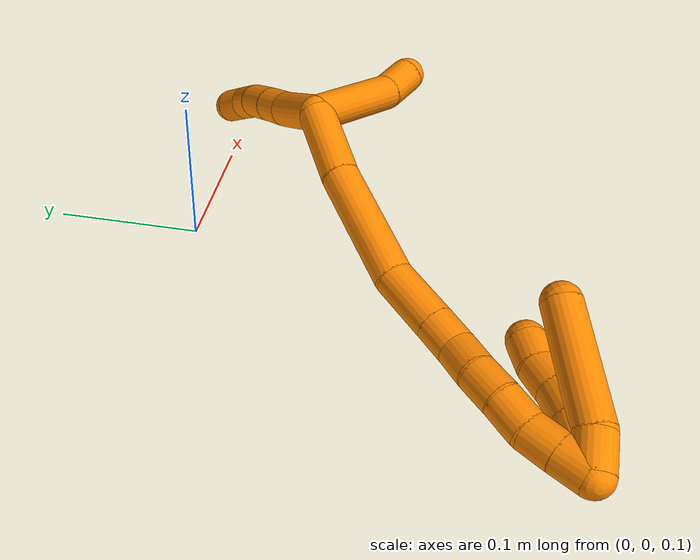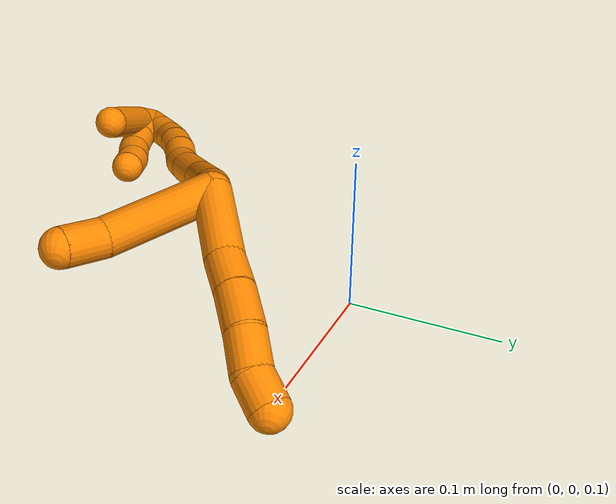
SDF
<sdf version="1.7">
 <world name="default">
  <model name="19">
   <static>0</static>
   <link name="19">
    <collision name="collision-cylinder-e_1_2_8">
     <pose>-0.005798 0.006249 -0.024558 -2.89242 -0.224919 1.46762</pose>
     <geometry><cylinder><radius>0.0125</radius><length>0.05199</length></cylinder></geometry>
     <surface>
      <friction><ode><mu>1.16</mu><mu2>1.16</mu2><slip1>0</slip1><slip2>0</slip2></ode></friction>
      <contact><ode><kp>1e+06</kp><kd>1</kd><max_vel>0</max_vel><min_depth>0.001</min_depth></ode></contact>
     </surface>
    </collision>
    <visual name="visual-cylinder-e_1_2_8">
     <pose>-0.005798 0.006249 -0.024558 -2.89242 -0.224919 1.46762</pose>
     <geometry><cylinder><radius>0.0125</radius><length>0.05199</length></cylinder></geometry>
     <material><ambient>0.996078 0.537255 0 1</ambient></material>
    </visual>
    <collision name="collision-cylinder-e_2_8_9">
     <pose>-0.013523 0.016771 -0.060078 -2.76988 -0.1624 0.816923</pose>
     <geometry><cylinder><radius>0.0125</radius><length>0.023845</length></cylinder></geometry>
     <surface>
      <friction><ode><mu>1.16</mu><mu2>1.16</mu2><slip1>0</slip1><slip2>0</slip2></ode></friction>
      <contact><ode><kp>1e+06</kp><kd>1</kd><max_vel>0</max_vel><min_depth>0.001</min_depth></ode></contact>
     </surface>
    </collision>
    <visual name="visual-cylinder-e_2_8_9">
     <pose>-0.013523 0.016771 -0.060078 -2.76988 -0.1624 0.816923</pose>
     <geometry><cylinder><radius>0.0125</radius><length>0.023845</length></cylinder></geometry>
     <material><ambient>0.996078 0.537255 0 1</ambient></material>
    </visual>
    <collision name="collision-cylinder-e_3_9_10">
     <pose>-0.018097 0.025251 -0.084391 -2.83637 -0.186805 1.09409</pose>
     <geometry><cylinder><radius>0.0125</radius><length>0.028493</length></cylinder></geometry>
     <surface>
      <friction><ode><mu>1.16</mu><mu2>1.16</mu2><slip1>0</slip1><slip2>0</slip2></ode></friction>
      <contact><ode><kp>1e+06</kp><kd>1</kd><max_vel>0</max_vel><min_depth>0.001</min_depth></ode></contact>
     </surface>
    </collision>
    <visual name="visual-cylinder-e_3_9_10">
     <pose>-0.018097 0.025251 -0.084391 -2.83637 -0.186805 1.09409</pose>
     <geometry><cylinder><radius>0.0125</radius><length>0.028493</length></cylinder></geometry>
     <material><ambient>0.996078 0.537255 0 1</ambient></material>
    </visual>
    <collision name="collision-cylinder-e_4_10_11">
     <pose>-0.024529 0.03164 -0.109247 -2.95414 -0.312744 2.0663</pose>
     <geometry><cylinder><radius>0.0125</radius><length>0.024614</length></cylinder></geometry>
     <surface>
      <friction><ode><mu>1.16</mu><mu2>1.16</mu2><slip1>0</slip1><slip2>0</slip2></ode></friction>
      <contact><ode><kp>1e+06</kp><kd>1</kd><max_vel>0</max_vel><min_depth>0.001</min_depth></ode></contact>
     </surface>
    </collision>
    <visual name="visual-cylinder-e_4_10_11">
     <pose>-0.024529 0.03164 -0.109247 -2.95414 -0.312744 2.0663</pose>
     <geometry><cylinder><radius>0.0125</radius><length>0.024614</length></cylinder></geometry>
     <material><ambient>0.996078 0.537255 0 1</ambient></material>
    </visual>
    <collision name="collision-cylinder-e_5_11_6">
     <pose>-0.032849 0.038 -0.129288 -2.6865 -0.445096 1.54781</pose>
     <geometry><cylinder><radius>0.0125</radius><length>0.021058</length></cylinder></geometry>
     <surface>
      <friction><ode><mu>1.16</mu><mu2>1.16</mu2><slip1>0</slip1><slip2>0</slip2></ode></friction>
      <contact><ode><kp>1e+06</kp><kd>1</kd><max_vel>0</max_vel><min_depth>0.001</min_depth></ode></contact>
     </surface>
    </collision>
    <visual name="visual-cylinder-e_5_11_6">
     <pose>-0.032849 0.038 -0.129288 -2.6865 -0.445096 1.54781</pose>
     <geometry><cylinder><radius>0.0125</radius><length>0.021058</length></cylinder></geometry>
     <material><ambient>0.996078 0.537255 0 1</ambient></material>
    </visual>
    <collision name="collision-cylinder-e_1_2_12">
     <pose>0.012731 -0.024925 -0.023316 2.32286 0.35701 0.788179</pose>
     <geometry><cylinder><radius>0.0125</radius><length>0.072856</length></cylinder></geometry>
     <surface>
      <friction><ode><mu>1.16</mu><mu2>1.16</mu2><slip1>0</slip1><slip2>0</slip2></ode></friction>
      <contact><ode><kp>1e+06</kp><kd>1</kd><max_vel>0</max_vel><min_depth>0.001</min_depth></ode></contact>
     </surface>
    </collision>
    <visual name="visual-cylinder-e_1_2_12">
     <pose>0.012731 -0.024925 -0.023316 2.32286 0.35701 0.788179</pose>
     <geometry><cylinder><radius>0.0125</radius><length>0.072856</length></cylinder></geometry>
     <material><ambient>0.996078 0.537255 0 1</ambient></material>
    </visual>
    <collision name="collision-cylinder-e_2_12_5">
     <pose>0.033298 -0.056734 -0.055316 2.47127 0.615529 1.47948</pose>
     <geometry><cylinder><radius>0.0125</radius><length>0.027144</length></cylinder></geometry>
     <surface>
      <friction><ode><mu>1.16</mu><mu2>1.16</mu2><slip1>0</slip1><slip2>0</slip2></ode></friction>
      <contact><ode><kp>1e+06</kp><kd>1</kd><max_vel>0</max_vel><min_depth>0.001</min_depth></ode></contact>
     </surface>
    </collision>
    <visual name="visual-cylinder-e_2_12_5">
     <pose>0.033298 -0.056734 -0.055316 2.47127 0.615529 1.47948</pose>
     <geometry><cylinder><radius>0.0125</radius><length>0.027144</length></cylinder></geometry>
     <material><ambient>0.996078 0.537255 0 1</ambient></material>
    </visual>
    <collision name="collision-cylinder-e_1_2_13">
     <pose>-0.013824 -0.011497 0.018933 0.545727 -0.557942 -0.159975</pose>
     <geometry><cylinder><radius>0.0125</radius><length>0.052221</length></cylinder></geometry>
     <surface>
      <friction><ode><mu>1.16</mu><mu2>1.16</mu2><slip1>0</slip1><slip2>0</slip2></ode></friction>
      <contact><ode><kp>1e+06</kp><kd>1</kd><max_vel>0</max_vel><min_depth>0.001</min_depth></ode></contact>
     </surface>
    </collision>
    <visual name="visual-cylinder-e_1_2_13">
     <pose>-0.013824 -0.011497 0.018933 0.545727 -0.557942 -0.159975</pose>
     <geometry><cylinder><radius>0.0125</radius><length>0.052221</length></cylinder></geometry>
     <material><ambient>0.996078 0.537255 0 1</ambient></material>
    </visual>
    <collision name="collision-cylinder-e_2_13_14">
     <pose>-0.04592 -0.043903 0.066861 0.62478 -0.472527 -0.155202</pose>
     <geometry><cylinder><radius>0.0125</radius><length>0.080293</length></cylinder></geometry>
     <surface>
      <friction><ode><mu>1.16</mu><mu2>1.16</mu2><slip1>0</slip1><slip2>0</slip2></ode></friction>
      <contact><ode><kp>1e+06</kp><kd>1</kd><max_vel>0</max_vel><min_depth>0.001</min_depth></ode></contact>
     </surface>
    </collision>
    <visual name="visual-cylinder-e_2_13_14">
     <pose>-0.04592 -0.043903 0.066861 0.62478 -0.472527 -0.155202</pose>
     <geometry><cylinder><radius>0.0125</radius><length>0.080293</length></cylinder></geometry>
     <material><ambient>0.996078 0.537255 0 1</ambient></material>
    </visual>
    <collision name="collision-cylinder-e_3_14_15">
     <pose>-0.069323 -0.077218 0.110529 0.701801 -0.260939 -0.095989</pose>
     <geometry><cylinder><radius>0.0125</radius><length>0.039776</length></cylinder></geometry>
     <surface>
      <friction><ode><mu>1.16</mu><mu2>1.16</mu2><slip1>0</slip1><slip2>0</slip2></ode></friction>
      <contact><ode><kp>1e+06</kp><kd>1</kd><max_vel>0</max_vel><min_depth>0.001</min_depth></ode></contact>
     </surface>
    </collision>
    <visual name="visual-cylinder-e_3_14_15">
     <pose>-0.069323 -0.077218 0.110529 0.701801 -0.260939 -0.095989</pose>
     <geometry><cylinder><radius>0.0125</radius><length>0.039776</length></cylinder></geometry>
     <material><ambient>0.996078 0.537255 0 1</ambient></material>
    </visual>
    <collision name="collision-cylinder-e_4_15_16">
     <pose>-0.077073 -0.095883 0.133408 0.651824 -0.24857 -0.084393</pose>
     <geometry><cylinder><radius>0.0125</radius><length>0.021295</length></cylinder></geometry>
     <surface>
      <friction><ode><mu>1.16</mu><mu2>1.16</mu2><slip1>0</slip1><slip2>0</slip2></ode></friction>
      <contact><ode><kp>1e+06</kp><kd>1</kd><max_vel>0</max_vel><min_depth>0.001</min_depth></ode></contact>
     </surface>
    </collision>
    <visual name="visual-cylinder-e_4_15_16">
     <pose>-0.077073 -0.095883 0.133408 0.651824 -0.24857 -0.084393</pose>
     <geometry><cylinder><radius>0.0125</radius><length>0.021295</length></cylinder></geometry>
     <material><ambient>0.996078 0.537255 0 1</ambient></material>
    </visual>
    <collision name="collision-cylinder-e_5_16_17">
     <pose>-0.081261 -0.106209 0.151619 0.385855 -0.144205 -0.028219</pose>
     <geometry><cylinder><radius>0.0125</radius><length>0.021828</length></cylinder></geometry>
     <surface>
      <friction><ode><mu>1.16</mu><mu2>1.16</mu2><slip1>0</slip1><slip2>0</slip2></ode></friction>
      <contact><ode><kp>1e+06</kp><kd>1</kd><max_vel>0</max_vel><min_depth>0.001</min_depth></ode></contact>
     </surface>
    </collision>
    <visual name="visual-cylinder-e_5_16_17">
     <pose>-0.081261 -0.106209 0.151619 0.385855 -0.144205 -0.028219</pose>
     <geometry><cylinder><radius>0.0125</radius><length>0.021828</length></cylinder></geometry>
     <material><ambient>0.996078 0.537255 0 1</ambient></material>
    </visual>
    <collision name="collision-cylinder-e_6_17_18">
     <pose>-0.084563 -0.115889 0.170941 0.542498 -0.157981 -0.044019</pose>
     <geometry><cylinder><radius>0.0125</radius><length>0.022029</length></cylinder></geometry>
     <surface>
      <friction><ode><mu>1.16</mu><mu2>1.16</mu2><slip1>0</slip1><slip2>0</slip2></ode></friction>
      <contact><ode><kp>1e+06</kp><kd>1</kd><max_vel>0</max_vel><min_depth>0.001</min_depth></ode></contact>
     </surface>
    </collision>
    <visual name="visual-cylinder-e_6_17_18">
     <pose>-0.084563 -0.115889 0.170941 0.542498 -0.157981 -0.044019</pose>
     <geometry><cylinder><radius>0.0125</radius><length>0.022029</length></cylinder></geometry>
     <material><ambient>0.996078 0.537255 0 1</ambient></material>
    </visual>
    <collision name="collision-cylinder-e_7_18_19">
     <pose>-0.089076 -0.128025 0.188937 0.644218 -0.250764 -0.08408</pose>
     <geometry><cylinder><radius>0.0125</radius><length>0.022414</length></cylinder></geometry>
     <surface>
      <friction><ode><mu>1.16</mu><mu2>1.16</mu2><slip1>0</slip1><slip2>0</slip2></ode></friction>
      <contact><ode><kp>1e+06</kp><kd>1</kd><max_vel>0</max_vel><min_depth>0.001</min_depth></ode></contact>
     </surface>
    </collision>
    <visual name="visual-cylinder-e_7_18_19">
     <pose>-0.089076 -0.128025 0.188937 0.644218 -0.250764 -0.08408</pose>
     <geometry><cylinder><radius>0.0125</radius><length>0.022414</length></cylinder></geometry>
     <material><ambient>0.996078 0.537255 0 1</ambient></material>
    </visual>
    <collision name="collision-cylinder-e_8_19_20">
     <pose>-0.09227 -0.141363 0.204981 0.746941 -0.041092 -0.016104</pose>
     <geometry><cylinder><radius>0.0125</radius><length>0.020087</length></cylinder></geometry>
     <surface>
      <friction><ode><mu>1.16</mu><mu2>1.16</mu2><slip1>0</slip1><slip2>0</slip2></ode></friction>
      <contact><ode><kp>1e+06</kp><kd>1</kd><max_vel>0</max_vel><min_depth>0.001</min_depth></ode></contact>
     </surface>
    </collision>
    <visual name="visual-cylinder-e_8_19_20">
     <pose>-0.09227 -0.141363 0.204981 0.746941 -0.041092 -0.016104</pose>
     <geometry><cylinder><radius>0.0125</radius><length>0.020087</length></cylinder></geometry>
     <material><ambient>0.996078 0.537255 0 1</ambient></material>
    </visual>
    <collision name="collision-cylinder-e_9_20_1">
     <pose>-0.092837 -0.155152 0.219552 0.768692 -0.015395 -0.006227</pose>
     <geometry><cylinder><radius>0.0125</radius><length>0.020057</length></cylinder></geometry>
     <surface>
      <friction><ode><mu>1.16</mu><mu2>1.16</mu2><slip1>0</slip1><slip2>0</slip2></ode></friction>
      <contact><ode><kp>1e+06</kp><kd>1</kd><max_vel>0</max_vel><min_depth>0.001</min_depth></ode></contact>
     </surface>
    </collision>
    <visual name="visual-cylinder-e_9_20_1">
     <pose>-0.092837 -0.155152 0.219552 0.768692 -0.015395 -0.006227</pose>
     <geometry><cylinder><radius>0.0125</radius><length>0.020057</length></cylinder></geometry>
     <material><ambient>0.996078 0.537255 0 1</ambient></material>
    </visual>
    <collision name="collision-cylinder-e_1_1_21">
     <pose>-0.08655 -0.160162 0.209841 -3.0262 0.361578 -2.52945</pose>
     <geometry><cylinder><radius>0.0125</radius><length>0.036418</length></cylinder></geometry>
     <surface>
      <friction><ode><mu>1.16</mu><mu2>1.16</mu2><slip1>0</slip1><slip2>0</slip2></ode></friction>
      <contact><ode><kp>1e+06</kp><kd>1</kd><max_vel>0</max_vel><min_depth>0.001</min_depth></ode></contact>
     </surface>
    </collision>
    <visual name="visual-cylinder-e_1_1_21">
     <pose>-0.08655 -0.160162 0.209841 -3.0262 0.361578 -2.52945</pose>
     <geometry><cylinder><radius>0.0125</radius><length>0.036418</length></cylinder></geometry>
     <material><ambient>0.996078 0.537255 0 1</ambient></material>
    </visual>
    <collision name="collision-cylinder-e_2_21_22">
     <pose>-0.077514 -0.156278 0.181664 -2.97243 0.223381 -1.84703</pose>
     <geometry><cylinder><radius>0.0125</radius><length>0.023427</length></cylinder></geometry>
     <surface>
      <friction><ode><mu>1.16</mu><mu2>1.16</mu2><slip1>0</slip1><slip2>0</slip2></ode></friction>
      <contact><ode><kp>1e+06</kp><kd>1</kd><max_vel>0</max_vel><min_depth>0.001</min_depth></ode></contact>
     </surface>
    </collision>
    <visual name="visual-cylinder-e_2_21_22">
     <pose>-0.077514 -0.156278 0.181664 -2.97243 0.223381 -1.84703</pose>
     <geometry><cylinder><radius>0.0125</radius><length>0.023427</length></cylinder></geometry>
     <material><ambient>0.996078 0.537255 0 1</ambient></material>
    </visual>
    <collision name="collision-cylinder-e_3_22_23">
     <pose>-0.073056 -0.150916 0.161153 -2.78575 0.186501 -0.959162</pose>
     <geometry><cylinder><radius>0.0125</radius><length>0.020088</length></cylinder></geometry>
     <surface>
      <friction><ode><mu>1.16</mu><mu2>1.16</mu2><slip1>0</slip1><slip2>0</slip2></ode></friction>
      <contact><ode><kp>1e+06</kp><kd>1</kd><max_vel>0</max_vel><min_depth>0.001</min_depth></ode></contact>
     </surface>
    </collision>
    <visual name="visual-cylinder-e_3_22_23">
     <pose>-0.073056 -0.150916 0.161153 -2.78575 0.186501 -0.959162</pose>
     <geometry><cylinder><radius>0.0125</radius><length>0.020088</length></cylinder></geometry>
     <material><ambient>0.996078 0.537255 0 1</ambient></material>
    </visual>
    <collision name="collision-cylinder-e_4_23_4">
     <pose>-0.067542 -0.145274 0.142819 -2.90353 0.372536 -2.01061</pose>
     <geometry><cylinder><radius>0.0125</radius><length>0.020066</length></cylinder></geometry>
     <surface>
      <friction><ode><mu>1.16</mu><mu2>1.16</mu2><slip1>0</slip1><slip2>0</slip2></ode></friction>
      <contact><ode><kp>1e+06</kp><kd>1</kd><max_vel>0</max_vel><min_depth>0.001</min_depth></ode></contact>
     </surface>
    </collision>
    <visual name="visual-cylinder-e_4_23_4">
     <pose>-0.067542 -0.145274 0.142819 -2.90353 0.372536 -2.01061</pose>
     <geometry><cylinder><radius>0.0125</radius><length>0.020066</length></cylinder></geometry>
     <material><ambient>0.996078 0.537255 0 1</ambient></material>
    </visual>
    <collision name="collision-cylinder-e_1_1_24">
     <pose>-0.084176 -0.161764 0.218751 -3.09689 0.832787 -3.04057</pose>
     <geometry><cylinder><radius>0.0125</radius><length>0.02383</length></cylinder></geometry>
     <surface>
      <friction><ode><mu>1.16</mu><mu2>1.16</mu2><slip1>0</slip1><slip2>0</slip2></ode></friction>
      <contact><ode><kp>1e+06</kp><kd>1</kd><max_vel>0</max_vel><min_depth>0.001</min_depth></ode></contact>
     </surface>
    </collision>
    <visual name="visual-cylinder-e_1_1_24">
     <pose>-0.084176 -0.161764 0.218751 -3.09689 0.832787 -3.04057</pose>
     <geometry><cylinder><radius>0.0125</radius><length>0.02383</length></cylinder></geometry>
     <material><ambient>0.996078 0.537255 0 1</ambient></material>
    </visual>
    <collision name="collision-cylinder-e_2_24_3">
     <pose>-0.052859 -0.152074 0.181468 -2.83299 0.632122 -2.2537</pose>
     <geometry><cylinder><radius>0.0125</radius><length>0.07617</length></cylinder></geometry>
     <surface>
      <friction><ode><mu>1.16</mu><mu2>1.16</mu2><slip1>0</slip1><slip2>0</slip2></ode></friction>
      <contact><ode><kp>1e+06</kp><kd>1</kd><max_vel>0</max_vel><min_depth>0.001</min_depth></ode></contact>
     </surface>
    </collision>
    <visual name="visual-cylinder-e_2_24_3">
     <pose>-0.052859 -0.152074 0.181468 -2.83299 0.632122 -2.2537</pose>
     <geometry><cylinder><radius>0.0125</radius><length>0.07617</length></cylinder></geometry>
     <material><ambient>0.996078 0.537255 0 1</ambient></material>
    </visual>
    <collision name="collision-sphere-3">
     <pose>-0.030356 -0.142742 0.152194 0 -0 0</pose>
     <geometry><sphere><radius>0.0125</radius></sphere></geometry>
     <surface>
      <friction><ode><mu>1.16</mu><mu2>1.16</mu2><slip1>0</slip1><slip2>0</slip2></ode></friction>
      <contact><ode><kp>1e+06</kp><kd>1</kd><max_vel>0</max_vel><min_depth>0.001</min_depth></ode></contact>
     </surface>
    </collision>
    <visual name="visual-sphere-3">
     <pose>-0.030356 -0.142742 0.152194 0 -0 0</pose>
     <geometry><sphere><radius>0.0125</radius></sphere></geometry>
     <material><ambient>0.996078 0.537255 0 1</ambient></material>
    </visual>
    <collision name="collision-sphere-24">
     <pose>-0.075361 -0.161406 0.210742 0 -0 0</pose>
     <geometry><sphere><radius>0.0125</radius></sphere></geometry>
     <surface>
      <friction><ode><mu>1.16</mu><mu2>1.16</mu2><slip1>0</slip1><slip2>0</slip2></ode></friction>
      <contact><ode><kp>1e+06</kp><kd>1</kd><max_vel>0</max_vel><min_depth>0.001</min_depth></ode></contact>
     </surface>
    </collision>
    <visual name="visual-sphere-24">
     <pose>-0.075361 -0.161406 0.210742 0 -0 0</pose>
     <geometry><sphere><radius>0.0125</radius></sphere></geometry>
     <material><ambient>0.996078 0.537255 0 1</ambient></material>
    </visual>
    <collision name="collision-sphere-4">
     <pose>-0.06389 -0.14307 0.133738 0 -0 0</pose>
     <geometry><sphere><radius>0.0125</radius></sphere></geometry>
     <surface>
      <friction><ode><mu>1.16</mu><mu2>1.16</mu2><slip1>0</slip1><slip2>0</slip2></ode></friction>
      <contact><ode><kp>1e+06</kp><kd>1</kd><max_vel>0</max_vel><min_depth>0.001</min_depth></ode></contact>
     </surface>
    </collision>
    <visual name="visual-sphere-4">
     <pose>-0.06389 -0.14307 0.133738 0 -0 0</pose>
     <geometry><sphere><radius>0.0125</radius></sphere></geometry>
     <material><ambient>0.996078 0.537255 0 1</ambient></material>
    </visual>
    <collision name="collision-sphere-23">
     <pose>-0.071194 -0.147478 0.151901 0 -0 0</pose>
     <geometry><sphere><radius>0.0125</radius></sphere></geometry>
     <surface>
      <friction><ode><mu>1.16</mu><mu2>1.16</mu2><slip1>0</slip1><slip2>0</slip2></ode></friction>
      <contact><ode><kp>1e+06</kp><kd>1</kd><max_vel>0</max_vel><min_depth>0.001</min_depth></ode></contact>
     </surface>
    </collision>
    <visual name="visual-sphere-23">
     <pose>-0.071194 -0.147478 0.151901 0 -0 0</pose>
     <geometry><sphere><radius>0.0125</radius></sphere></geometry>
     <material><ambient>0.996078 0.537255 0 1</ambient></material>
    </visual>
    <collision name="collision-sphere-22">
     <pose>-0.074919 -0.154355 0.170404 0 -0 0</pose>
     <geometry><sphere><radius>0.0125</radius></sphere></geometry>
     <surface>
      <friction><ode><mu>1.16</mu><mu2>1.16</mu2><slip1>0</slip1><slip2>0</slip2></ode></friction>
      <contact><ode><kp>1e+06</kp><kd>1</kd><max_vel>0</max_vel><min_depth>0.001</min_depth></ode></contact>
     </surface>
    </collision>
    <visual name="visual-sphere-22">
     <pose>-0.074919 -0.154355 0.170404 0 -0 0</pose>
     <geometry><sphere><radius>0.0125</radius></sphere></geometry>
     <material><ambient>0.996078 0.537255 0 1</ambient></material>
    </visual>
    <collision name="collision-sphere-21">
     <pose>-0.080108 -0.158201 0.192923 0 -0 0</pose>
     <geometry><sphere><radius>0.0125</radius></sphere></geometry>
     <surface>
      <friction><ode><mu>1.16</mu><mu2>1.16</mu2><slip1>0</slip1><slip2>0</slip2></ode></friction>
      <contact><ode><kp>1e+06</kp><kd>1</kd><max_vel>0</max_vel><min_depth>0.001</min_depth></ode></contact>
     </surface>
    </collision>
    <visual name="visual-sphere-21">
     <pose>-0.080108 -0.158201 0.192923 0 -0 0</pose>
     <geometry><sphere><radius>0.0125</radius></sphere></geometry>
     <material><ambient>0.996078 0.537255 0 1</ambient></material>
    </visual>
    <collision name="collision-sphere-1">
     <pose>-0.092991 -0.162123 0.22676 0 -0 0</pose>
     <geometry><sphere><radius>0.0125</radius></sphere></geometry>
     <surface>
      <friction><ode><mu>1.16</mu><mu2>1.16</mu2><slip1>0</slip1><slip2>0</slip2></ode></friction>
      <contact><ode><kp>1e+06</kp><kd>1</kd><max_vel>0</max_vel><min_depth>0.001</min_depth></ode></contact>
     </surface>
    </collision>
    <visual name="visual-sphere-1">
     <pose>-0.092991 -0.162123 0.22676 0 -0 0</pose>
     <geometry><sphere><radius>0.0125</radius></sphere></geometry>
     <material><ambient>0.996078 0.537255 0 1</ambient></material>
    </visual>
    <collision name="collision-sphere-6">
     <pose>-0.037382 0.042177 -0.137824 0 -0 0</pose>
     <geometry><sphere><radius>0.0125</radius></sphere></geometry>
     <surface>
      <friction><ode><mu>1.16</mu><mu2>1.16</mu2><slip1>0</slip1><slip2>0</slip2></ode></friction>
      <contact><ode><kp>1e+06</kp><kd>1</kd><max_vel>0</max_vel><min_depth>0.001</min_depth></ode></contact>
     </surface>
    </collision>
    <visual name="visual-sphere-6">
     <pose>-0.037382 0.042177 -0.137824 0 -0 0</pose>
     <geometry><sphere><radius>0.0125</radius></sphere></geometry>
     <material><ambient>0.996078 0.537255 0 1</ambient></material>
    </visual>
    <collision name="collision-sphere-11">
     <pose>-0.028315 0.033822 -0.120752 0 -0 0</pose>
     <geometry><sphere><radius>0.0125</radius></sphere></geometry>
     <surface>
      <friction><ode><mu>1.16</mu><mu2>1.16</mu2><slip1>0</slip1><slip2>0</slip2></ode></friction>
      <contact><ode><kp>1e+06</kp><kd>1</kd><max_vel>0</max_vel><min_depth>0.001</min_depth></ode></contact>
     </surface>
    </collision>
    <visual name="visual-sphere-11">
     <pose>-0.028315 0.033822 -0.120752 0 -0 0</pose>
     <geometry><sphere><radius>0.0125</radius></sphere></geometry>
     <material><ambient>0.996078 0.537255 0 1</ambient></material>
    </visual>
    <collision name="collision-sphere-10">
     <pose>-0.020742 0.029458 -0.097743 0 -0 0</pose>
     <geometry><sphere><radius>0.0125</radius></sphere></geometry>
     <surface>
      <friction><ode><mu>1.16</mu><mu2>1.16</mu2><slip1>0</slip1><slip2>0</slip2></ode></friction>
      <contact><ode><kp>1e+06</kp><kd>1</kd><max_vel>0</max_vel><min_depth>0.001</min_depth></ode></contact>
     </surface>
    </collision>
    <visual name="visual-sphere-10">
     <pose>-0.020742 0.029458 -0.097743 0 -0 0</pose>
     <geometry><sphere><radius>0.0125</radius></sphere></geometry>
     <material><ambient>0.996078 0.537255 0 1</ambient></material>
    </visual>
    <collision name="collision-sphere-9">
     <pose>-0.015451 0.021045 -0.07104 0 -0 0</pose>
     <geometry><sphere><radius>0.0125</radius></sphere></geometry>
     <surface>
      <friction><ode><mu>1.16</mu><mu2>1.16</mu2><slip1>0</slip1><slip2>0</slip2></ode></friction>
      <contact><ode><kp>1e+06</kp><kd>1</kd><max_vel>0</max_vel><min_depth>0.001</min_depth></ode></contact>
     </surface>
    </collision>
    <visual name="visual-sphere-9">
     <pose>-0.015451 0.021045 -0.07104 0 -0 0</pose>
     <geometry><sphere><radius>0.0125</radius></sphere></geometry>
     <material><ambient>0.996078 0.537255 0 1</ambient></material>
    </visual>
    <collision name="collision-sphere-2">
     <geometry><sphere><radius>0.0125</radius></sphere></geometry>
     <surface>
      <friction><ode><mu>1.16</mu><mu2>1.16</mu2><slip1>0</slip1><slip2>0</slip2></ode></friction>
      <contact><ode><kp>1e+06</kp><kd>1</kd><max_vel>0</max_vel><min_depth>0.001</min_depth></ode></contact>
     </surface>
    </collision>
    <visual name="visual-sphere-2">
     <geometry><sphere><radius>0.0125</radius></sphere></geometry>
     <material><ambient>0.996078 0.537255 0 1</ambient></material>
    </visual>
    <collision name="collision-sphere-19">
     <pose>-0.091857 -0.134545 0.197618 0 -0 0</pose>
     <geometry><sphere><radius>0.0125</radius></sphere></geometry>
     <surface>
      <friction><ode><mu>1.16</mu><mu2>1.16</mu2><slip1>0</slip1><slip2>0</slip2></ode></friction>
      <contact><ode><kp>1e+06</kp><kd>1</kd><max_vel>0</max_vel><min_depth>0.001</min_depth></ode></contact>
     </surface>
    </collision>
    <visual name="visual-sphere-19">
     <pose>-0.091857 -0.134545 0.197618 0 -0 0</pose>
     <geometry><sphere><radius>0.0125</radius></sphere></geometry>
     <material><ambient>0.996078 0.537255 0 1</ambient></material>
    </visual>
    <collision name="collision-sphere-8">
     <pose>-0.011595 0.012498 -0.049115 0 -0 0</pose>
     <geometry><sphere><radius>0.0125</radius></sphere></geometry>
     <surface>
      <friction><ode><mu>1.16</mu><mu2>1.16</mu2><slip1>0</slip1><slip2>0</slip2></ode></friction>
      <contact><ode><kp>1e+06</kp><kd>1</kd><max_vel>0</max_vel><min_depth>0.001</min_depth></ode></contact>
     </surface>
    </collision>
    <visual name="visual-sphere-8">
     <pose>-0.011595 0.012498 -0.049115 0 -0 0</pose>
     <geometry><sphere><radius>0.0125</radius></sphere></geometry>
     <material><ambient>0.996078 0.537255 0 1</ambient></material>
    </visual>
    <collision name="collision-sphere-12">
     <pose>0.025461 -0.04985 -0.046633 0 -0 0</pose>
     <geometry><sphere><radius>0.0125</radius></sphere></geometry>
     <surface>
      <friction><ode><mu>1.16</mu><mu2>1.16</mu2><slip1>0</slip1><slip2>0</slip2></ode></friction>
      <contact><ode><kp>1e+06</kp><kd>1</kd><max_vel>0</max_vel><min_depth>0.001</min_depth></ode></contact>
     </surface>
    </collision>
    <visual name="visual-sphere-12">
     <pose>0.025461 -0.04985 -0.046633 0 -0 0</pose>
     <geometry><sphere><radius>0.0125</radius></sphere></geometry>
     <material><ambient>0.996078 0.537255 0 1</ambient></material>
    </visual>
    <collision name="collision-sphere-5">
     <pose>0.041134 -0.063619 -0.064 0 -0 0</pose>
     <geometry><sphere><radius>0.0125</radius></sphere></geometry>
     <surface>
      <friction><ode><mu>1.16</mu><mu2>1.16</mu2><slip1>0</slip1><slip2>0</slip2></ode></friction>
      <contact><ode><kp>1e+06</kp><kd>1</kd><max_vel>0</max_vel><min_depth>0.001</min_depth></ode></contact>
     </surface>
    </collision>
    <visual name="visual-sphere-5">
     <pose>0.041134 -0.063619 -0.064 0 -0 0</pose>
     <geometry><sphere><radius>0.0125</radius></sphere></geometry>
     <material><ambient>0.996078 0.537255 0 1</ambient></material>
    </visual>
    <collision name="collision-sphere-13">
     <pose>-0.027648 -0.022994 0.037867 0 -0 0</pose>
     <geometry><sphere><radius>0.0125</radius></sphere></geometry>
     <surface>
      <friction><ode><mu>1.16</mu><mu2>1.16</mu2><slip1>0</slip1><slip2>0</slip2></ode></friction>
      <contact><ode><kp>1e+06</kp><kd>1</kd><max_vel>0</max_vel><min_depth>0.001</min_depth></ode></contact>
     </surface>
    </collision>
    <visual name="visual-sphere-13">
     <pose>-0.027648 -0.022994 0.037867 0 -0 0</pose>
     <geometry><sphere><radius>0.0125</radius></sphere></geometry>
     <material><ambient>0.996078 0.537255 0 1</ambient></material>
    </visual>
    <collision name="collision-sphere-14">
     <pose>-0.064192 -0.064813 0.095855 0 -0 0</pose>
     <geometry><sphere><radius>0.0125</radius></sphere></geometry>
     <surface>
      <friction><ode><mu>1.16</mu><mu2>1.16</mu2><slip1>0</slip1><slip2>0</slip2></ode></friction>
      <contact><ode><kp>1e+06</kp><kd>1</kd><max_vel>0</max_vel><min_depth>0.001</min_depth></ode></contact>
     </surface>
    </collision>
    <visual name="visual-sphere-14">
     <pose>-0.064192 -0.064813 0.095855 0 -0 0</pose>
     <geometry><sphere><radius>0.0125</radius></sphere></geometry>
     <material><ambient>0.996078 0.537255 0 1</ambient></material>
    </visual>
    <collision name="collision-sphere-15">
     <pose>-0.074454 -0.089622 0.125203 0 -0 0</pose>
     <geometry><sphere><radius>0.0125</radius></sphere></geometry>
     <surface>
      <friction><ode><mu>1.16</mu><mu2>1.16</mu2><slip1>0</slip1><slip2>0</slip2></ode></friction>
      <contact><ode><kp>1e+06</kp><kd>1</kd><max_vel>0</max_vel><min_depth>0.001</min_depth></ode></contact>
     </surface>
    </collision>
    <visual name="visual-sphere-15">
     <pose>-0.074454 -0.089622 0.125203 0 -0 0</pose>
     <geometry><sphere><radius>0.0125</radius></sphere></geometry>
     <material><ambient>0.996078 0.537255 0 1</ambient></material>
    </visual>
    <collision name="collision-sphere-16">
     <pose>-0.079693 -0.102144 0.141612 0 -0 0</pose>
     <geometry><sphere><radius>0.0125</radius></sphere></geometry>
     <surface>
      <friction><ode><mu>1.16</mu><mu2>1.16</mu2><slip1>0</slip1><slip2>0</slip2></ode></friction>
      <contact><ode><kp>1e+06</kp><kd>1</kd><max_vel>0</max_vel><min_depth>0.001</min_depth></ode></contact>
     </surface>
    </collision>
    <visual name="visual-sphere-16">
     <pose>-0.079693 -0.102144 0.141612 0 -0 0</pose>
     <geometry><sphere><radius>0.0125</radius></sphere></geometry>
     <material><ambient>0.996078 0.537255 0 1</ambient></material>
    </visual>
    <collision name="collision-sphere-17">
     <pose>-0.08283 -0.110274 0.161625 0 -0 0</pose>
     <geometry><sphere><radius>0.0125</radius></sphere></geometry>
     <surface>
      <friction><ode><mu>1.16</mu><mu2>1.16</mu2><slip1>0</slip1><slip2>0</slip2></ode></friction>
      <contact><ode><kp>1e+06</kp><kd>1</kd><max_vel>0</max_vel><min_depth>0.001</min_depth></ode></contact>
     </surface>
    </collision>
    <visual name="visual-sphere-17">
     <pose>-0.08283 -0.110274 0.161625 0 -0 0</pose>
     <geometry><sphere><radius>0.0125</radius></sphere></geometry>
     <material><ambient>0.996078 0.537255 0 1</ambient></material>
    </visual>
    <collision name="collision-sphere-18">
     <pose>-0.086295 -0.121505 0.180256 0 -0 0</pose>
     <geometry><sphere><radius>0.0125</radius></sphere></geometry>
     <surface>
      <friction><ode><mu>1.16</mu><mu2>1.16</mu2><slip1>0</slip1><slip2>0</slip2></ode></friction>
      <contact><ode><kp>1e+06</kp><kd>1</kd><max_vel>0</max_vel><min_depth>0.001</min_depth></ode></contact>
     </surface>
    </collision>
    <visual name="visual-sphere-18">
     <pose>-0.086295 -0.121505 0.180256 0 -0 0</pose>
     <geometry><sphere><radius>0.0125</radius></sphere></geometry>
     <material><ambient>0.996078 0.537255 0 1</ambient></material>
    </visual>
    <collision name="collision-sphere-20">
     <pose>-0.092683 -0.148181 0.212345 0 -0 0</pose>
     <geometry><sphere><radius>0.0125</radius></sphere></geometry>
     <surface>
      <friction><ode><mu>1.16</mu><mu2>1.16</mu2><slip1>0</slip1><slip2>0</slip2></ode></friction>
      <contact><ode><kp>1e+06</kp><kd>1</kd><max_vel>0</max_vel><min_depth>0.001</min_depth></ode></contact>
     </surface>
    </collision>
    <visual name="visual-sphere-20">
     <pose>-0.092683 -0.148181 0.212345 0 -0 0</pose>
     <geometry><sphere><radius>0.0125</radius></sphere></geometry>
     <material><ambient>0.996078 0.537255 0 1</ambient></material>
    </visual>
    <inertial>
     <pose>-0.043444 -0.07219 0.075648 0 -0 0</pose>
     <mass>0.75</mass>
     <inertia><ixx>7.4e-05</ixx><ixy>0</ixy><ixz>0</ixz><iyy>8.3e-05</iyy><iyz>0</iyz><izz>3.2e-05</izz></inertia>
    </inertial>
   </link>
   <pose>0.041074 -0.077912 0.182819 0.828477 -1.03879 -0.592693</pose>
  </model>
 </world>
</sdf>
